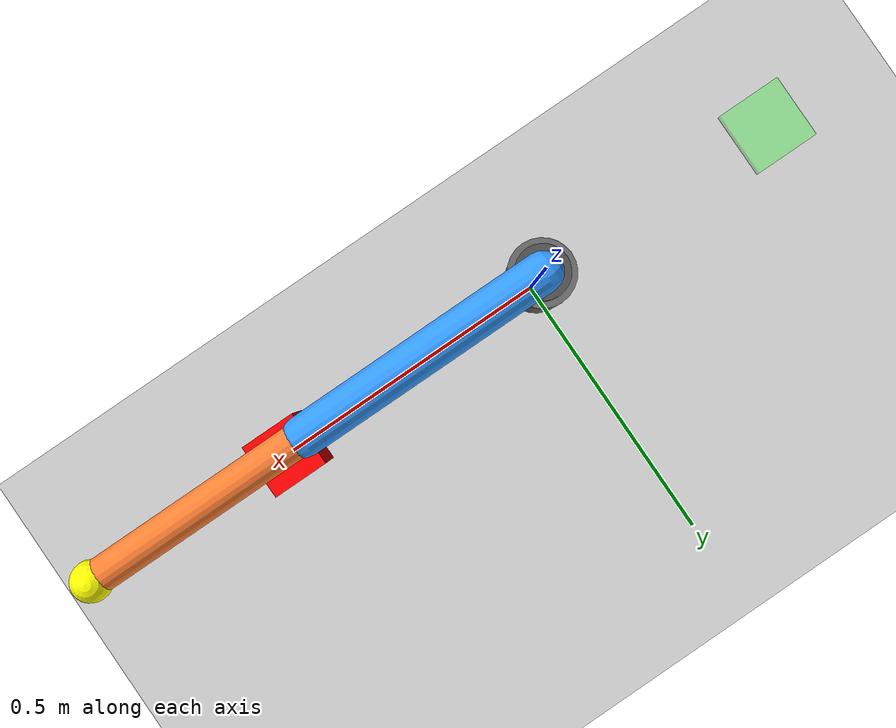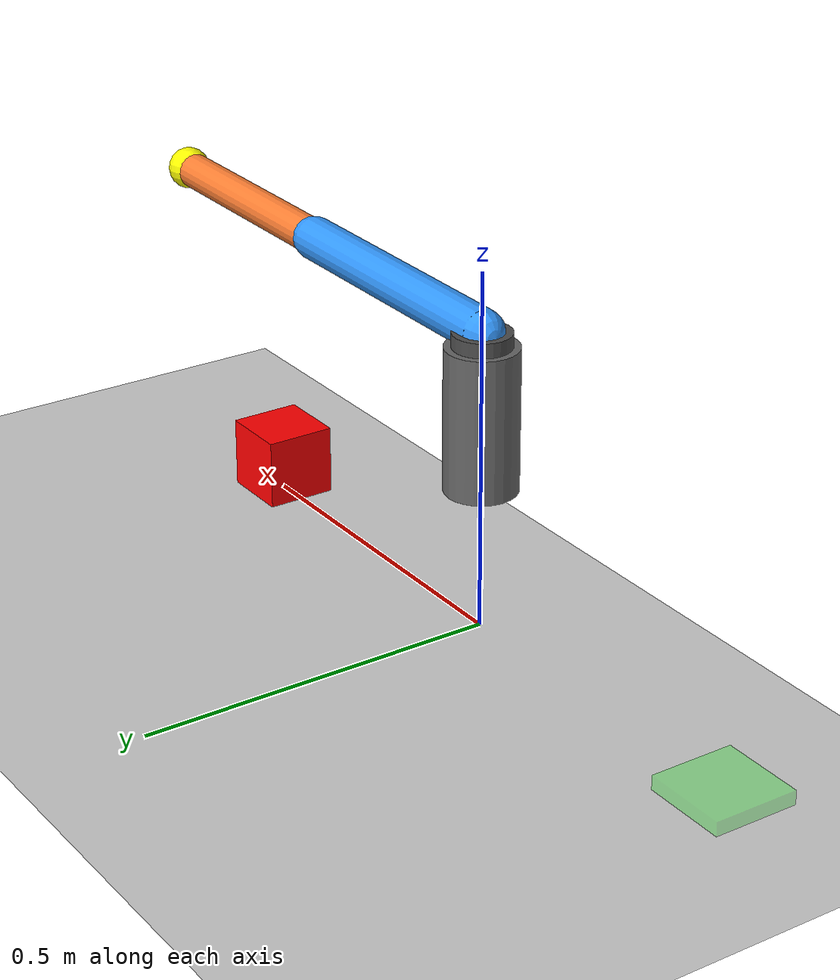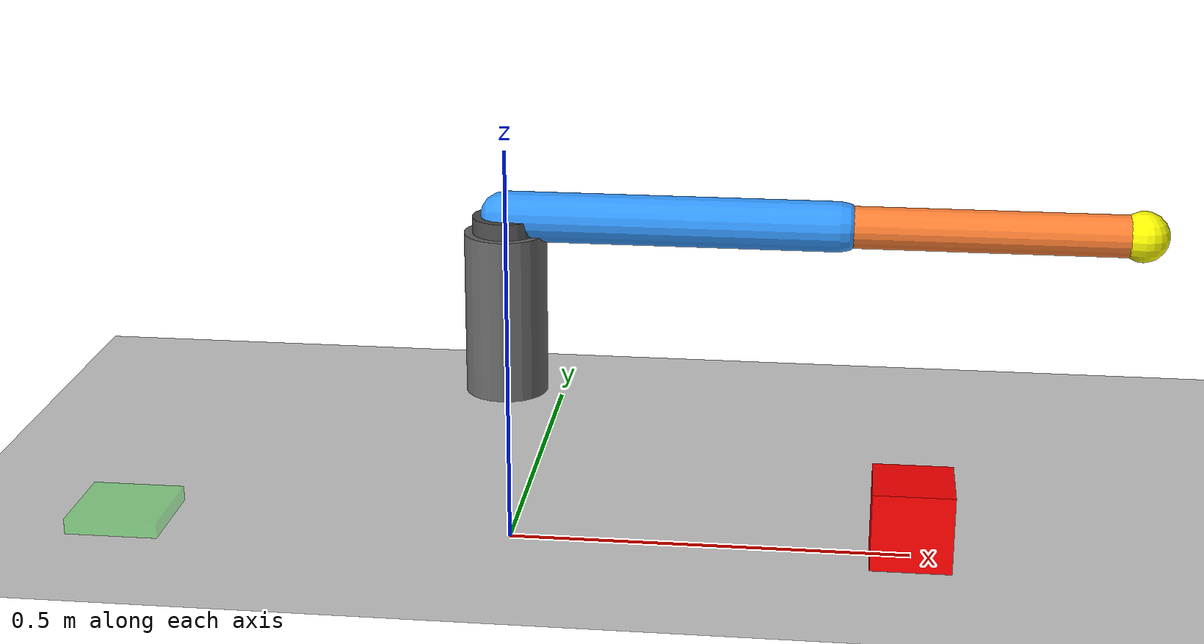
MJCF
<mujoco model="pick_and_place">
  <option gravity="0 0 -9.81" timestep="0.002"/>

  <worldbody>
    <light pos="0 0 3"/>
    <geom name="floor" type="plane" size="2 2 0.1" rgba=".8 .8 .8 1"/>

    <!-- Fixed base -->
    <body name="base" pos="0 0 0.3">
      <geom type="cylinder" size="0.05 0.1" rgba="0.4 0.4 0.4 1"/>

      <!-- Shoulder - rotates horizontally -->
      <body name="shoulder" pos="0 0 0.1">
        <joint name="joint_shoulder" type="hinge" axis="0 0 1" damping="20"/>
        <geom type="cylinder" size="0.04 0.02" rgba="0.3 0.3 0.3 1"/>

        <!-- Upper arm - tilts vertically -->
        <body name="upper_arm" pos="0 0 0.02">
          <joint name="joint_upper" type="hinge" axis="0 1 0" damping="5"/>
          <geom type="capsule" fromto="0 0 0  0.4 0 0" size="0.03" rgba="0.2 0.6 1 1"/>

          <!-- Forearm - bends at elbow -->
          <body name="forearm" pos="0.4 0 0">
            <joint name="joint_elbow" type="hinge" axis="0 1 0" damping="5"/>
            <geom type="capsule" fromto="0 0 0  0.35 0 0" size="0.025" rgba="1 0.5 0.2 1"/>

            <!-- Tip -->
            <body name="tip" pos="0.35 0 0">
              <geom type="sphere" size="0.03" rgba="1 1 0 1"/>
            </body>
          </body>
        </body>
      </body>
    </body>

    <!-- Object to pick -->
    <body name="object" pos="0.5 0 0.05">
      <freejoint/>
      <geom type="box" size="0.05 0.05 0.05" rgba="1 0 0 1" mass="0.1"/>
    </body>

    <!-- Target -->
    <body name="target" pos="-0.5 0 0.01">
      <geom type="box" size="0.06 0.06 0.01" rgba="0 1 0 0.3"/>
    </body>

  </worldbody>

  <actuator>
    <position name="act_shoulder" joint="joint_shoulder" kp="100"/>
    <position name="act_upper"    joint="joint_upper"    kp="100"/>
    <position name="act_elbow"    joint="joint_elbow"    kp="100"/>
  </actuator>

</mujoco>
